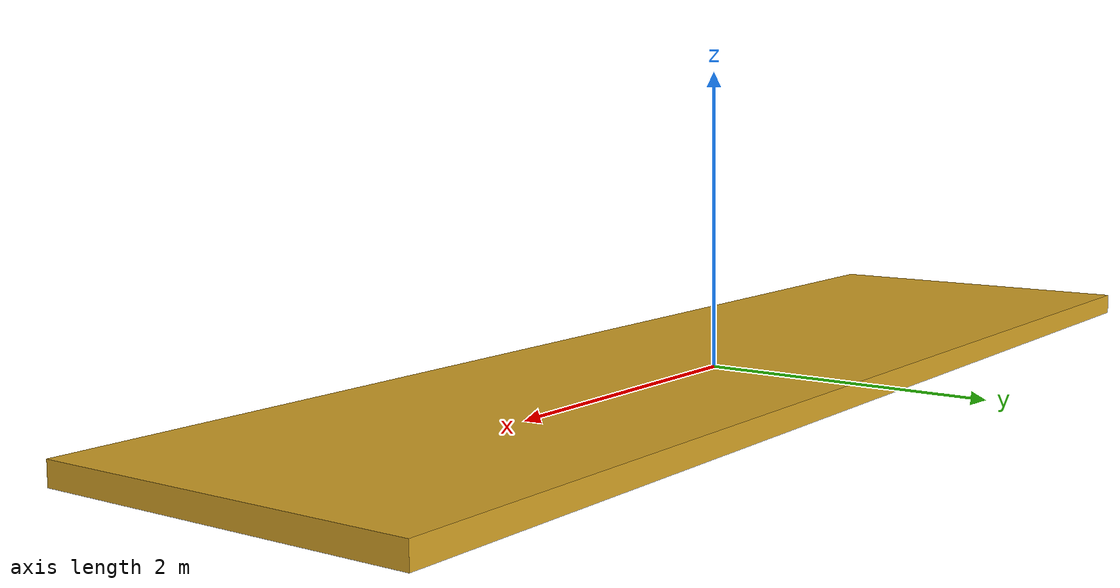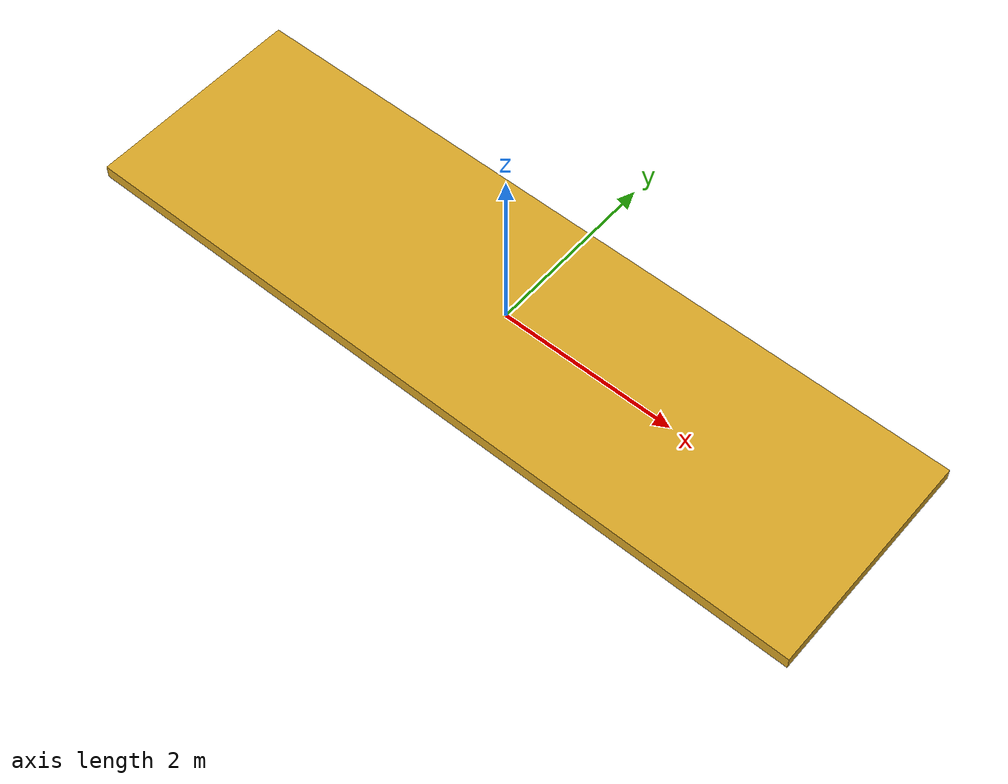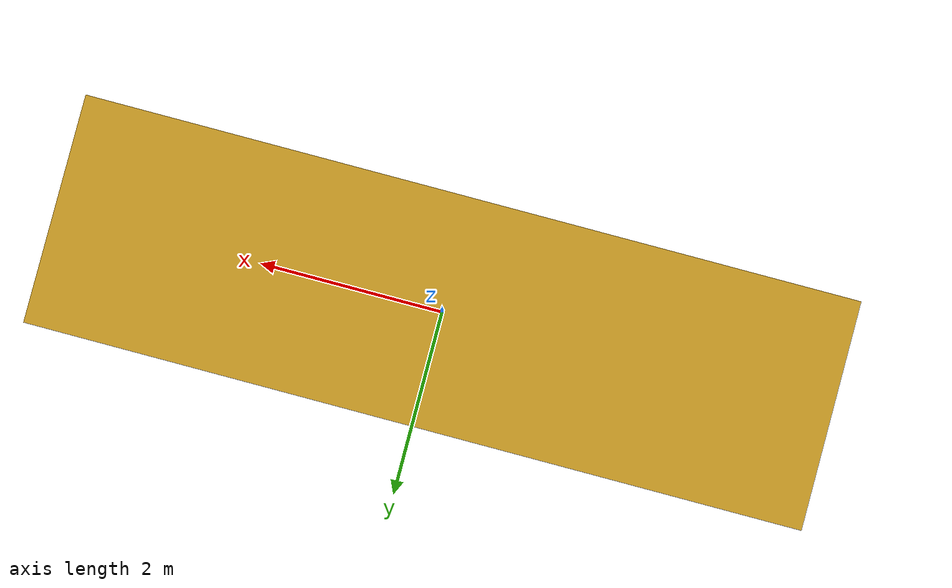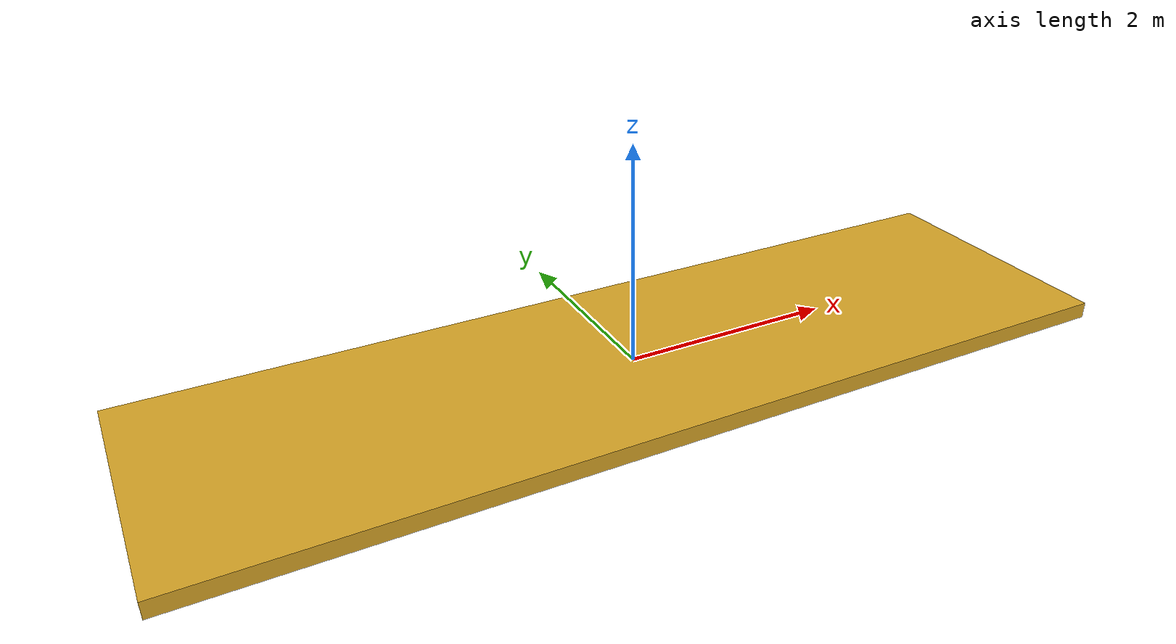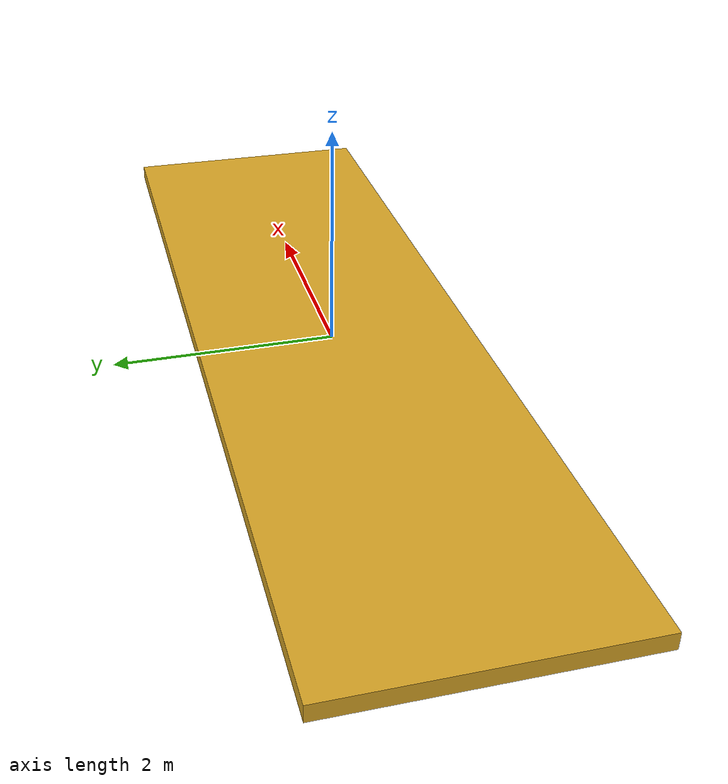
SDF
<?xml version="1.0" ?>
<sdf version="1.8">
  <model name="incline_ramp">
    <static>true</static>
    <link name="ramp_link">
      <collision name="collision">
        <geometry>
          <box><size>8.5 2.5 0.15</size></box>
        </geometry>
        <surface>
          <friction>
            <ode>
              <mu>1.2</mu>
              <mu2>1.2</mu2>
            </ode>
          </friction>
        </surface>
      </collision>
      <visual name="visual">
        <geometry>
          <box><size>8.5 2.5 0.15</size></box>
        </geometry>
        <material>
          <ambient>0.85 0.65 0.15 1</ambient>
          <diffuse>0.85 0.65 0.15 1</diffuse>
        </material>
      </visual>
    </link>
  </model>
</sdf>
